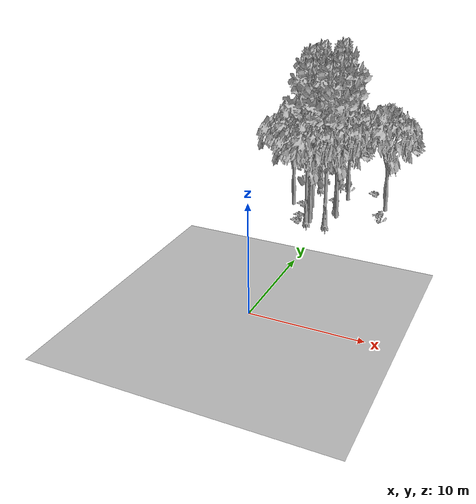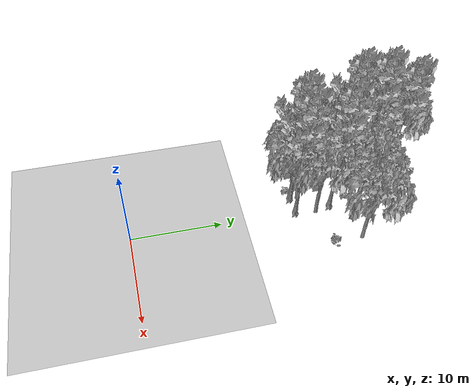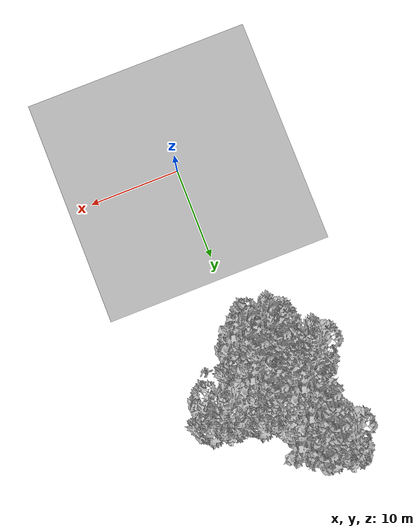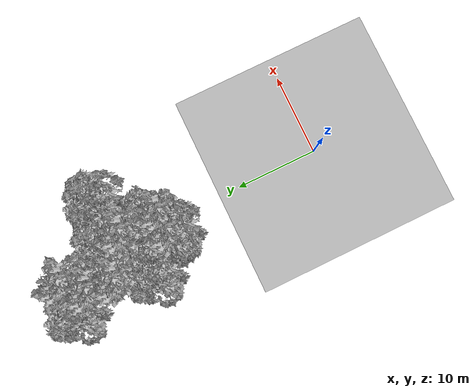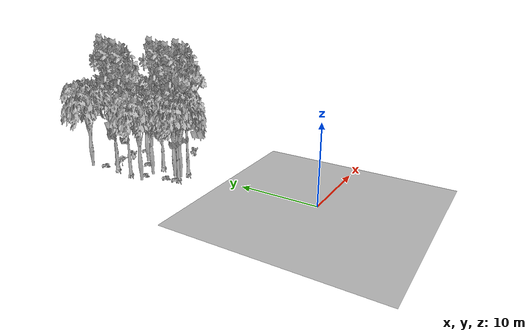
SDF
<sdf version="1.7">
 <world name="default">
  <model name="ground_plane">
   <static>1</static>
   <link name="link">
    <collision name="collision">
     <pose>-50 0 0 0 -0 0</pose>
     <geometry><plane><normal>0 0 1</normal><size>80 80</size></plane></geometry>
     <surface><contact><ode><min_depth>0.01</min_depth><max_vel>0</max_vel></ode></contact></surface>
    </collision>
    <visual name="grass">
     <cast_shadows>0</cast_shadows>
     <geometry>
      <mesh>
       <scale>0.46714285714285714 0.46714285714285714 0.1</scale>
       <uri>file://grass_plane/meshes/grass_plane.dae</uri>
      </mesh>
     </geometry>
    </visual>
   </link>
  </model>
  <model name="Tree 74">
   <static>1</static>
   <pose>-0.20568641651737352 22.434716283666738 0 1.57079 -0 0</pose>
   <link name="link">
    <collision name="collision">
     <geometry><mesh><scale>3.5 5 3.5</scale><uri>model://tree_9/meshes/tree_9.obj</uri></mesh></geometry>
    </collision>
    <visual name="visual">
     <geometry><mesh><scale>3.5 5 3.5</scale><uri>model://tree_9/meshes/tree_9.obj</uri></mesh></geometry>
    </visual>
   </link>
  </model>
  <model name="Tree 78">
   <static>1</static>
   <pose>-5.002616062283053 30.76746515196065 0 1.57079 -0 0</pose>
   <link name="link">
    <collision name="collision">
     <geometry><mesh><scale>3.5 5 3.5</scale><uri>model://tree_2/meshes/tree_2.obj</uri></mesh></geometry>
    </collision>
    <visual name="visual">
     <geometry><mesh><scale>3.5 5 3.5</scale><uri>model://tree_2/meshes/tree_2.obj</uri></mesh></geometry>
    </visual>
   </link>
  </model>
  <model name="Tree 167">
   <static>1</static>
   <pose>-3.745249972246441 27.335467651278705 0 1.57079 -0 0</pose>
   <link name="link">
    <collision name="collision">
     <geometry><mesh><scale>3.5 5 3.5</scale><uri>model://tree_9/meshes/tree_9.obj</uri></mesh></geometry>
    </collision>
    <visual name="visual">
     <geometry><mesh><scale>3.5 5 3.5</scale><uri>model://tree_9/meshes/tree_9.obj</uri></mesh></geometry>
    </visual>
   </link>
  </model>
  <model name="Tree 191">
   <static>1</static>
   <pose>-2.0558017506070456 18.340166808341976 0 1.57079 -0 0</pose>
   <link name="link">
    <collision name="collision">
     <geometry><mesh><scale>3.5 5 3.5</scale><uri>model://tree_9/meshes/tree_9.obj</uri></mesh></geometry>
    </collision>
    <visual name="visual">
     <geometry><mesh><scale>3.5 5 3.5</scale><uri>model://tree_9/meshes/tree_9.obj</uri></mesh></geometry>
    </visual>
   </link>
  </model>
  <model name="Tree 249">
   <static>1</static>
   <pose>-4.074514900654506 24.706475335014147 0 1.57079 -0 0</pose>
   <link name="link">
    <collision name="collision">
     <geometry><mesh><scale>3.5 5 3.5</scale><uri>model://tree_9/meshes/tree_9.obj</uri></mesh></geometry>
    </collision>
    <visual name="visual">
     <geometry><mesh><scale>3.5 5 3.5</scale><uri>model://tree_9/meshes/tree_9.obj</uri></mesh></geometry>
    </visual>
   </link>
  </model>
  <model name="Tree 250">
   <static>1</static>
   <pose>-5.01520997705444 21.964484939341126 0 1.57079 -0 0</pose>
   <link name="link">
    <collision name="collision">
     <geometry><mesh><scale>3.5 5 3.5</scale><uri>model://tree_2/meshes/tree_2.obj</uri></mesh></geometry>
    </collision>
    <visual name="visual">
     <geometry><mesh><scale>3.5 5 3.5</scale><uri>model://tree_2/meshes/tree_2.obj</uri></mesh></geometry>
    </visual>
   </link>
  </model>
  <model name="Tree 382">
   <static>1</static>
   <pose>0.4134688423631303 20.57620638337341 0 1.57079 -0 0</pose>
   <link name="link">
    <collision name="collision">
     <geometry><mesh><scale>3.5 5 3.5</scale><uri>model://tree_2/meshes/tree_2.obj</uri></mesh></geometry>
    </collision>
    <visual name="visual">
     <geometry><mesh><scale>3.5 5 3.5</scale><uri>model://tree_2/meshes/tree_2.obj</uri></mesh></geometry>
    </visual>
   </link>
  </model>
  <model name="Tree 404">
   <static>1</static>
   <pose>-1.9512979239111843 29.345617529184935 0 1.57079 -0 0</pose>
   <link name="link">
    <collision name="collision">
     <geometry><mesh><scale>3.5 5 3.5</scale><uri>model://tree_9/meshes/tree_9.obj</uri></mesh></geometry>
    </collision>
    <visual name="visual">
     <geometry><mesh><scale>3.5 5 3.5</scale><uri>model://tree_9/meshes/tree_9.obj</uri></mesh></geometry>
    </visual>
   </link>
  </model>
  <model name="Tree 414">
   <static>1</static>
   <pose>0.00021386953731195035 18.399803803214752 0 1.57079 -0 0</pose>
   <link name="link">
    <collision name="collision">
     <geometry><mesh><scale>3.5 5 3.5</scale><uri>model://tree_9/meshes/tree_9.obj</uri></mesh></geometry>
    </collision>
    <visual name="visual">
     <geometry><mesh><scale>3.5 5 3.5</scale><uri>model://tree_9/meshes/tree_9.obj</uri></mesh></geometry>
    </visual>
   </link>
  </model>
  <model name="Tree 464">
   <static>1</static>
   <pose>4.714308131799719 24.389842745267984 0 1.57079 -0 0</pose>
   <link name="link">
    <collision name="collision">
     <geometry><mesh><scale>3.5 5 3.5</scale><uri>model://tree_2/meshes/tree_2.obj</uri></mesh></geometry>
    </collision>
    <visual name="visual">
     <geometry><mesh><scale>3.5 5 3.5</scale><uri>model://tree_2/meshes/tree_2.obj</uri></mesh></geometry>
    </visual>
   </link>
  </model>
  <model name="Tree 549">
   <static>1</static>
   <pose>0.10882150581795713 25.52453772641664 0 1.57079 -0 0</pose>
   <link name="link">
    <collision name="collision">
     <geometry><mesh><scale>3.5 5 3.5</scale><uri>model://tree_2/meshes/tree_2.obj</uri></mesh></geometry>
    </collision>
    <visual name="visual">
     <geometry><mesh><scale>3.5 5 3.5</scale><uri>model://tree_2/meshes/tree_2.obj</uri></mesh></geometry>
    </visual>
   </link>
  </model>
  <model name="Tree 565">
   <static>1</static>
   <pose>-2.8471323484957907 22.000336419141682 0 1.57079 -0 0</pose>
   <link name="link">
    <collision name="collision">
     <geometry><mesh><scale>3.5 5 3.5</scale><uri>model://tree_2/meshes/tree_2.obj</uri></mesh></geometry>
    </collision>
    <visual name="visual">
     <geometry><mesh><scale>3.5 5 3.5</scale><uri>model://tree_2/meshes/tree_2.obj</uri></mesh></geometry>
    </visual>
   </link>
  </model>
  <model name="Tree 567">
   <static>1</static>
   <pose>-1.718494201668264 18.309038109892 0 1.57079 -0 0</pose>
   <link name="link">
    <collision name="collision">
     <geometry><mesh><scale>3.5 5 3.5</scale><uri>model://tree_2/meshes/tree_2.obj</uri></mesh></geometry>
    </collision>
    <visual name="visual">
     <geometry><mesh><scale>3.5 5 3.5</scale><uri>model://tree_2/meshes/tree_2.obj</uri></mesh></geometry>
    </visual>
   </link>
  </model>
  <model name="Tree 597">
   <static>1</static>
   <pose>-1.9222197764222742 19.096396287297203 0 1.57079 -0 0</pose>
   <link name="link">
    <collision name="collision">
     <geometry><mesh><scale>3.5 5 3.5</scale><uri>model://tree_2/meshes/tree_2.obj</uri></mesh></geometry>
    </collision>
    <visual name="visual">
     <geometry><mesh><scale>3.5 5 3.5</scale><uri>model://tree_2/meshes/tree_2.obj</uri></mesh></geometry>
    </visual>
   </link>
  </model>
  <model name="Bush 6">
   <static>1</static>
   <pose>4.996762710193231 21.151054392182104 0 1.57079 -0 0</pose>
   <link name="link">
    <collision name="collision">
     <geometry><mesh><scale>2 2 2</scale><uri>model://bush_4/meshes/bush_4.obj</uri></mesh></geometry>
     <surface><contact><collide_without_contact>false</collide_without_contact></contact></surface>
    </collision>
    <visual name="visual">
     <geometry><mesh><scale>2 2 2</scale><uri>model://bush_4/meshes/bush_4.obj</uri></mesh></geometry>
    </visual>
   </link>
  </model>
  <model name="Bush 41">
   <static>1</static>
   <pose>-0.5301259251995205 27.551689142416265 0 1.57079 -0 0</pose>
   <link name="link">
    <collision name="collision">
     <geometry><mesh><scale>2 2 2</scale><uri>model://bush_4/meshes/bush_4.obj</uri></mesh></geometry>
     <surface><contact><collide_without_contact>false</collide_without_contact></contact></surface>
    </collision>
    <visual name="visual">
     <geometry><mesh><scale>2 2 2</scale><uri>model://bush_4/meshes/bush_4.obj</uri></mesh></geometry>
    </visual>
   </link>
  </model>
  <model name="Bush 54">
   <static>1</static>
   <pose>-3.0397458295192763 27.197803293192976 0 1.57079 -0 0</pose>
   <link name="link">
    <collision name="collision">
     <geometry><mesh><scale>2 2 2</scale><uri>model://bush_5/meshes/bush_5.obj</uri></mesh></geometry>
     <surface><contact><collide_without_contact>false</collide_without_contact></contact></surface>
    </collision>
    <visual name="visual">
     <geometry><mesh><scale>2 2 2</scale><uri>model://bush_5/meshes/bush_5.obj</uri></mesh></geometry>
    </visual>
   </link>
  </model>
  <model name="Bush 169">
   <static>1</static>
   <pose>-1.065374973669499 24.449915742298273 0 1.57079 -0 0</pose>
   <link name="link">
    <collision name="collision">
     <geometry><mesh><scale>2 2 2</scale><uri>model://bush_2/meshes/bush_2.obj</uri></mesh></geometry>
     <surface><contact><collide_without_contact>false</collide_without_contact></contact></surface>
    </collision>
    <visual name="visual">
     <geometry><mesh><scale>2 2 2</scale><uri>model://bush_2/meshes/bush_2.obj</uri></mesh></geometry>
    </visual>
   </link>
  </model>
  <model name="Bush 332">
   <static>1</static>
   <pose>-4.393697688546965 28.95599991734096 0 1.57079 -0 0</pose>
   <link name="link">
    <collision name="collision">
     <geometry><mesh><scale>2 2 2</scale><uri>model://bush_2/meshes/bush_2.obj</uri></mesh></geometry>
     <surface><contact><collide_without_contact>false</collide_without_contact></contact></surface>
    </collision>
    <visual name="visual">
     <geometry><mesh><scale>2 2 2</scale><uri>model://bush_2/meshes/bush_2.obj</uri></mesh></geometry>
    </visual>
   </link>
  </model>
  <model name="Bush 432">
   <static>1</static>
   <pose>-4.022148157696016 22.27605153973154 0 1.57079 -0 0</pose>
   <link name="link">
    <collision name="collision">
     <geometry><mesh><scale>2 2 2</scale><uri>model://bush_2/meshes/bush_2.obj</uri></mesh></geometry>
     <surface><contact><collide_without_contact>false</collide_without_contact></contact></surface>
    </collision>
    <visual name="visual">
     <geometry><mesh><scale>2 2 2</scale><uri>model://bush_2/meshes/bush_2.obj</uri></mesh></geometry>
    </visual>
   </link>
  </model>
  <model name="Bush 499">
   <static>1</static>
   <pose>-3.0766523505748467 18.087256845072815 0 1.57079 -0 0</pose>
   <link name="link">
    <collision name="collision">
     <geometry><mesh><scale>2 2 2</scale><uri>model://bush_2/meshes/bush_2.obj</uri></mesh></geometry>
     <surface><contact><collide_without_contact>false</collide_without_contact></contact></surface>
    </collision>
    <visual name="visual">
     <geometry><mesh><scale>2 2 2</scale><uri>model://bush_2/meshes/bush_2.obj</uri></mesh></geometry>
    </visual>
   </link>
  </model>
  <model name="Bush 521">
   <static>1</static>
   <pose>-3.2605217673779165 19.438169217270733 0 1.57079 -0 0</pose>
   <link name="link">
    <collision name="collision">
     <geometry><mesh><scale>2 2 2</scale><uri>model://bush_2/meshes/bush_2.obj</uri></mesh></geometry>
     <surface><contact><collide_without_contact>false</collide_without_contact></contact></surface>
    </collision>
    <visual name="visual">
     <geometry><mesh><scale>2 2 2</scale><uri>model://bush_2/meshes/bush_2.obj</uri></mesh></geometry>
    </visual>
   </link>
  </model>
  <model name="Bush 631">
   <static>1</static>
   <pose>2.487188632886273 28.151810313547628 0 1.57079 -0 0</pose>
   <link name="link">
    <collision name="collision">
     <geometry><mesh><scale>2 2 2</scale><uri>model://bush_2/meshes/bush_2.obj</uri></mesh></geometry>
     <surface><contact><collide_without_contact>false</collide_without_contact></contact></surface>
    </collision>
    <visual name="visual">
     <geometry><mesh><scale>2 2 2</scale><uri>model://bush_2/meshes/bush_2.obj</uri></mesh></geometry>
    </visual>
   </link>
  </model>
 </world>
</sdf>
